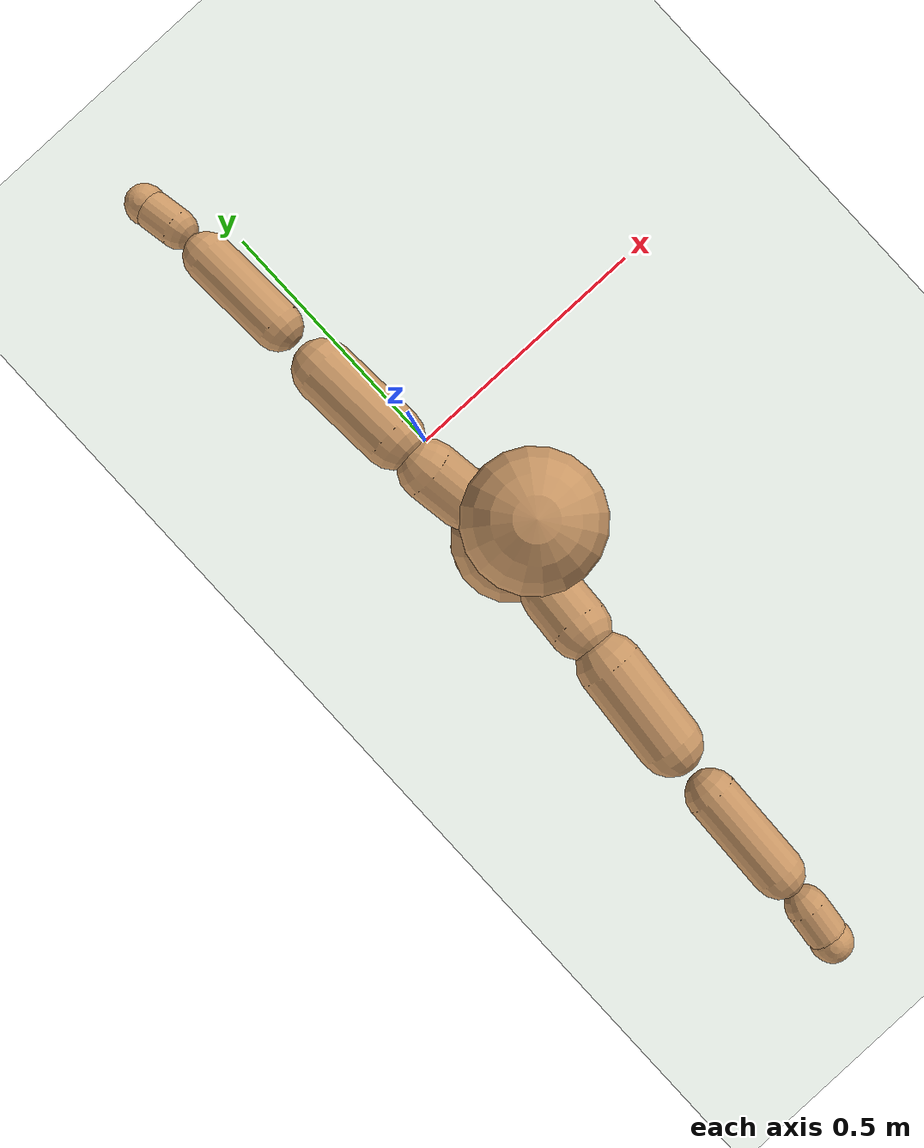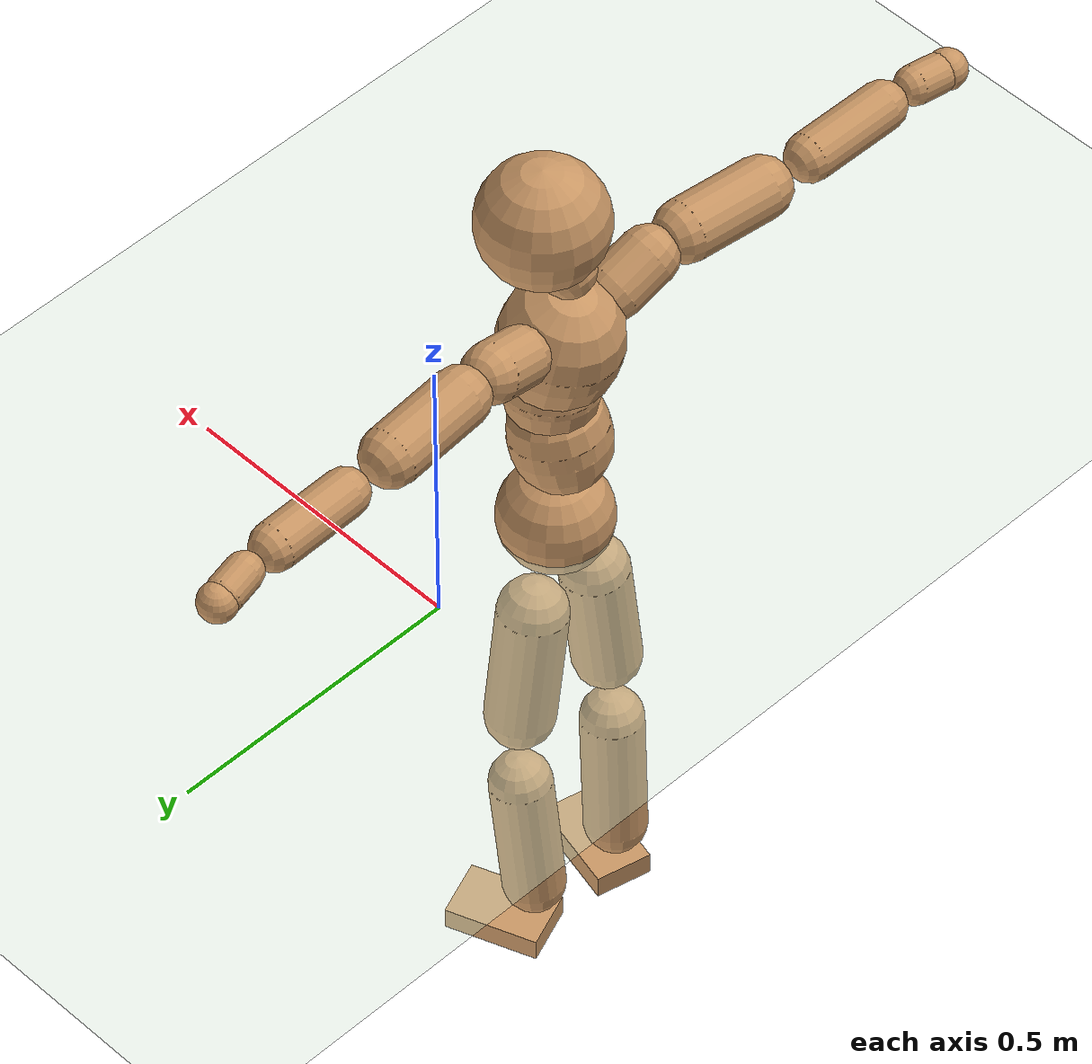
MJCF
<mujoco model="humanoid">
  <compiler coordinate="local" angle="radian"/>
  <default>
    <joint damping="0.0" armature="0.01" stiffness="0.0" limited="true"/>
    <geom conaffinity="1" condim="3" contype="7" margin="0.001" rgba="0.8 0.6 .4 1"/>
  </default>
  <asset>
    <texture type="skybox" builtin="gradient" rgb1=".4 .5 .6" rgb2="0 0 0" width="100" height="100"/>
    <texture builtin="flat" height="1278" mark="cross" markrgb="1 1 1" name="texgeom" random="0.01" rgb1="0.8 0.6 0.4" rgb2="0.8 0.6 0.4" type="cube" width="127"/>
    <texture builtin="checker" height="100" name="texplane" rgb1="0 0 0" rgb2="0.8 0.8 0.8" type="2d" width="100"/>
    <material name="MatPlane" reflectance="0.5" shininess="1" specular="1" texrepeat="60 60" texture="texplane"/>
    <material name="geom" texture="texgeom" texuniform="true"/>
  </asset>
  <worldbody>
    <light cutoff="100" diffuse="1 1 1" dir="-0 0 -1.3" directional="true" exponent="1" pos="0 0 1.3" specular=".1 .1 .1"/>
    <geom conaffinity="1" condim="3" name="floor" pos="0 0 0" rgba="0.8 0.9 0.8 1" size="100 100 .2" type="plane" material="MatPlane"/>
    <body name="Pelvis" pos="0.0011 -0.2404 0.0186">
      <freejoint name="Pelvis"/>
      <geom type="sphere" contype="1" conaffinity="1" density="500" size="0.0913" pos="0.0000 0.0000 0.0000" name="Pelvis"/>
      <body name="L_Hip" pos="-0.0178 0.0556 -0.0799">
        <joint name="L_Hip_x" type="hinge" pos="0 0 0" axis="1 0 0" stiffness="800" damping="80" armature="0.02" range="-180.0000 180.0000"/>
        <joint name="L_Hip_y" type="hinge" pos="0 0 0" axis="0 1 0" stiffness="800" damping="80" armature="0.02" range="-180.0000 180.0000"/>
        <joint name="L_Hip_z" type="hinge" pos="0 0 0" axis="0 0 1" stiffness="800" damping="80" armature="0.02" range="-180.0000 180.0000"/>
        <geom type="capsule" contype="1" conaffinity="1" density="500" fromto="0.0013 0.0082 -0.0730 0.0052 0.0328 -0.2920" size="0.0561" name="L_Hip"/>
        <body name="L_Knee" pos="0.0065 0.041 -0.365">
          <joint name="L_Knee_x" type="hinge" pos="0 0 0" axis="1 0 0" stiffness="800" damping="80" armature="0.02" range="-180.0000 180.0000"/>
          <joint name="L_Knee_y" type="hinge" pos="0 0 0" axis="0 1 0" stiffness="800" damping="80" armature="0.02" range="-180.0000 180.0000"/>
          <joint name="L_Knee_z" type="hinge" pos="0 0 0" axis="0 0 1" stiffness="800" damping="80" armature="0.02" range="-180.0000 180.0000"/>
          <geom type="capsule" contype="1" conaffinity="1" density="500" fromto="-0.0071 -0.0025 -0.0767 -0.0282 -0.0099 -0.3069" size="0.0506" name="L_Knee"/>
          <body name="L_Ankle" pos="-0.0353 -0.0123 -0.3836">
            <joint name="L_Ankle_x" type="hinge" pos="0 0 0" axis="1 0 0" stiffness="800" damping="80" armature="0.02" range="-180.0000 180.0000"/>
            <joint name="L_Ankle_y" type="hinge" pos="0 0 0" axis="0 1 0" stiffness="800" damping="80" armature="0.02" range="-180.0000 180.0000"/>
            <joint name="L_Ankle_z" type="hinge" pos="0 0 0" axis="0 0 1" stiffness="800" damping="80" armature="0.02" range="-180.0000 180.0000"/>
            <geom type="box" contype="1" conaffinity="1" density="500" pos="0.0558 0.0213 -0.0277" size="0.0782 0.0499 0.0201" quat="0.9834 0.0000 0.0000 0.1813" name="L_Ankle"/>
            <body name="L_Toe" pos="0.1115 0.0426 -0.0554">
              <joint name="L_Toe_x" type="hinge" pos="0 0 0" axis="1 0 0" stiffness="500" damping="50" armature="0.02" range="-180.0000 180.0000"/>
              <joint name="L_Toe_y" type="hinge" pos="0 0 0" axis="0 1 0" stiffness="500" damping="50" armature="0.02" range="-180.0000 180.0000"/>
              <joint name="L_Toe_z" type="hinge" pos="0 0 0" axis="0 0 1" stiffness="500" damping="50" armature="0.02" range="-180.0000 180.0000"/>
              <geom type="box" contype="1" conaffinity="1" density="500" pos="0.0000 0.0000 0.0287" size="0.001 0.0023 0.0011" quat="0.9826 0.0000 0.0000 0.1859" name="L_Toe"/>
            </body>
          </body>
        </body>
      </body>
      <body name="R_Hip" pos="-0.0143 -0.0577 -0.0881">
        <joint name="R_Hip_x" type="hinge" pos="0 0 0" axis="1 0 0" stiffness="800" damping="80" armature="0.02" range="-180.0000 180.0000"/>
        <joint name="R_Hip_y" type="hinge" pos="0 0 0" axis="0 1 0" stiffness="800" damping="80" armature="0.02" range="-180.0000 180.0000"/>
        <joint name="R_Hip_z" type="hinge" pos="0 0 0" axis="0 0 1" stiffness="800" damping="80" armature="0.02" range="-180.0000 180.0000"/>
        <geom type="capsule" contype="1" conaffinity="1" density="500" fromto="-0.0007 -0.0085 -0.0720 -0.0029 -0.0339 -0.2881" size="0.056" name="R_Hip"/>
        <body name="R_Knee" pos="-0.0036 -0.0424 -0.3601">
          <joint name="R_Knee_x" type="hinge" pos="0 0 0" axis="1 0 0" stiffness="800" damping="80" armature="0.02" range="-180.0000 180.0000"/>
          <joint name="R_Knee_y" type="hinge" pos="0 0 0" axis="0 1 0" stiffness="800" damping="80" armature="0.02" range="-180.0000 180.0000"/>
          <joint name="R_Knee_z" type="hinge" pos="0 0 0" axis="0 0 1" stiffness="800" damping="80" armature="0.02" range="-180.0000 180.0000"/>
          <geom type="capsule" contype="1" conaffinity="1" density="500" fromto="-0.0065 0.0033 -0.0756 -0.0259 0.0131 -0.3023" size="0.0514" name="R_Knee"/>
          <body name="R_Ankle" pos="-0.0323 0.0164 -0.3778">
            <joint name="R_Ankle_x" type="hinge" pos="0 0 0" axis="1 0 0" stiffness="800" damping="80" armature="0.02" range="-180.0000 180.0000"/>
            <joint name="R_Ankle_y" type="hinge" pos="0 0 0" axis="0 1 0" stiffness="800" damping="80" armature="0.02" range="-180.0000 180.0000"/>
            <joint name="R_Ankle_z" type="hinge" pos="0 0 0" axis="0 0 1" stiffness="800" damping="80" armature="0.02" range="-180.0000 180.0000"/>
            <geom type="box" contype="1" conaffinity="1" density="500" pos="0.0596 -0.0142 -0.0294" size="0.0834 0.0479 0.0208" quat="0.9931 0.0000 0.0000 -0.1169" name="R_Ankle"/>
            <body name="R_Toe" pos="0.1191 -0.0284 -0.0588">
              <joint name="R_Toe_x" type="hinge" pos="0 0 0" axis="1 0 0" stiffness="500" damping="50" armature="0.02" range="-180.0000 180.0000"/>
              <joint name="R_Toe_y" type="hinge" pos="0 0 0" axis="0 1 0" stiffness="500" damping="50" armature="0.02" range="-180.0000 180.0000"/>
              <joint name="R_Toe_z" type="hinge" pos="0 0 0" axis="0 0 1" stiffness="500" damping="50" armature="0.02" range="-180.0000 180.0000"/>
              <geom type="box" contype="1" conaffinity="1" density="500" pos="0.0000 0.0000 0.0310" size="0.001 0.0023 0.0011" quat="0.9942 0.0000 0.0000 -0.1072" name="R_Toe"/>
            </body>
          </body>
        </body>
      </body>
      <body name="Torso" pos="-0.0308 0.004 0.1212">
        <joint name="Torso_x" type="hinge" pos="0 0 0" axis="1 0 0" stiffness="1000" damping="100" armature="0.02" range="-180.0000 180.0000"/>
        <joint name="Torso_y" type="hinge" pos="0 0 0" axis="0 1 0" stiffness="1000" damping="100" armature="0.02" range="-180.0000 180.0000"/>
        <joint name="Torso_z" type="hinge" pos="0 0 0" axis="0 0 1" stiffness="1000" damping="100" armature="0.02" range="-180.0000 180.0000"/>
        <geom type="capsule" contype="1" conaffinity="1" density="500" fromto="0.0184 0.0028 0.0824 0.0123 0.0019 0.0550" size="0.0782" name="Torso"/>
        <body name="Spine" pos="0.0307 0.0047 0.1374">
          <joint name="Spine_x" type="hinge" pos="0 0 0" axis="1 0 0" stiffness="1000" damping="100" armature="0.02" range="-180.0000 180.0000"/>
          <joint name="Spine_y" type="hinge" pos="0 0 0" axis="0 1 0" stiffness="1000" damping="100" armature="0.02" range="-180.0000 180.0000"/>
          <joint name="Spine_z" type="hinge" pos="0 0 0" axis="0 0 1" stiffness="1000" damping="100" armature="0.02" range="-180.0000 180.0000"/>
          <geom type="capsule" contype="1" conaffinity="1" density="500" fromto="0.0013 -0.0017 0.0329 0.0009 -0.0011 0.0219" size="0.076" name="Spine"/>
          <body name="Chest" pos="0.0022 -0.0028 0.0549">
            <joint name="Chest_x" type="hinge" pos="0 0 0" axis="1 0 0" stiffness="1000" damping="100" armature="0.02" range="-180.0000 180.0000"/>
            <joint name="Chest_y" type="hinge" pos="0 0 0" axis="0 1 0" stiffness="1000" damping="100" armature="0.02" range="-180.0000 180.0000"/>
            <joint name="Chest_z" type="hinge" pos="0 0 0" axis="0 0 1" stiffness="1000" damping="100" armature="0.02" range="-180.0000 180.0000"/>
            <geom type="capsule" contype="1" conaffinity="1" density="500" fromto="-0.0164 -0.0053 0.0827 -0.0109 -0.0035 0.0551" size="0.0953" name="Chest"/>
            <body name="Neck" pos="-0.0334 -0.0122 0.2003">
              <joint name="Neck_x" type="hinge" pos="0 0 0" axis="1 0 0" stiffness="500" damping="50" armature="0.02" range="-180.0000 180.0000"/>
              <joint name="Neck_y" type="hinge" pos="0 0 0" axis="0 1 0" stiffness="500" damping="50" armature="0.02" range="-180.0000 180.0000"/>
              <joint name="Neck_z" type="hinge" pos="0 0 0" axis="0 0 1" stiffness="500" damping="50" armature="0.02" range="-180.0000 180.0000"/>
              <geom type="capsule" contype="1" conaffinity="1" density="500" fromto="0.0107 0.0018 0.0181 0.0427 0.0073 0.0723" size="0.0433" name="Neck"/>
              <body name="Head" pos="0.0533 0.0092 0.0904">
                <joint name="Head_x" type="hinge" pos="0 0 0" axis="1 0 0" stiffness="500" damping="50" armature="0.02" range="-180.0000 180.0000"/>
                <joint name="Head_y" type="hinge" pos="0 0 0" axis="0 1 0" stiffness="500" damping="50" armature="0.02" range="-180.0000 180.0000"/>
                <joint name="Head_z" type="hinge" pos="0 0 0" axis="0 0 1" stiffness="500" damping="50" armature="0.02" range="-180.0000 180.0000"/>
                <geom type="sphere" contype="1" conaffinity="1" density="500" size="0.1016" pos="0.0000 0.0000 0.0000" name="Head"/>
              </body>
            </body>
            <body name="L_Thorax" pos="-0.0232 0.0655 0.1063">
              <joint name="L_Thorax_x" type="hinge" pos="0 0 0" axis="1 0 0" stiffness="500" damping="50" armature="0.02" range="-180.0000 180.0000"/>
              <joint name="L_Thorax_y" type="hinge" pos="0 0 0" axis="0 1 0" stiffness="500" damping="50" armature="0.02" range="-180.0000 180.0000"/>
              <joint name="L_Thorax_z" type="hinge" pos="0 0 0" axis="0 0 1" stiffness="500" damping="50" armature="0.02" range="-180.0000 180.0000"/>
              <geom type="capsule" contype="1" conaffinity="1" density="500" fromto="-0.0034 0.0224 0.0082 -0.0138 0.0895 0.0326" size="0.047" name="L_Thorax"/>
              <body name="L_Shoulder" pos="-0.0172 0.1119 0.0408">
                <joint name="L_Shoulder_x" type="hinge" pos="0 0 0" axis="1 0 0" stiffness="500" damping="50" armature="0.02" range="-720.0000 720.0000"/>
                <joint name="L_Shoulder_y" type="hinge" pos="0 0 0" axis="0 1 0" stiffness="500" damping="50" armature="0.02" range="-720.0000 720.0000"/>
                <joint name="L_Shoulder_z" type="hinge" pos="0 0 0" axis="0 0 1" stiffness="500" damping="50" armature="0.02" range="-720.0000 720.0000"/>
                <geom type="capsule" contype="1" conaffinity="1" density="500" fromto="-0.0028 0.0471 -0.0021 -0.0112 0.1885 -0.0085" size="0.0479" name="L_Shoulder"/>
                <body name="L_Elbow" pos="-0.014 0.2357 -0.0106">
                  <joint name="L_Elbow_x" type="hinge" pos="0 0 0" axis="1 0 0" stiffness="500" damping="50" armature="0.02" range="-720.0000 720.0000"/>
                  <joint name="L_Elbow_y" type="hinge" pos="0 0 0" axis="0 1 0" stiffness="500" damping="50" armature="0.02" range="-720.0000 720.0000"/>
                  <joint name="L_Elbow_z" type="hinge" pos="0 0 0" axis="0 0 1" stiffness="500" damping="50" armature="0.02" range="-720.0000 720.0000"/>
                  <geom type="capsule" contype="1" conaffinity="1" density="500" fromto="-0.0023 0.0468 0.0017 -0.0091 0.1872 0.0066" size="0.0379" name="L_Elbow"/>
                  <body name="L_Wrist" pos="-0.0113 0.234 0.0083">
                    <joint name="L_Wrist_x" type="hinge" pos="0 0 0" axis="1 0 0" stiffness="300" damping="30" armature="0.02" range="-180.0000 180.0000"/>
                    <joint name="L_Wrist_y" type="hinge" pos="0 0 0" axis="0 1 0" stiffness="300" damping="30" armature="0.02" range="-180.0000 180.0000"/>
                    <joint name="L_Wrist_z" type="hinge" pos="0 0 0" axis="0 0 1" stiffness="300" damping="30" armature="0.02" range="-180.0000 180.0000"/>
                    <geom type="capsule" contype="1" conaffinity="1" density="500" fromto="-0.0026 0.0150 -0.0018 -0.0106 0.0598 -0.0072" size="0.0299" name="L_Wrist"/>
                    <body name="L_Hand" pos="-0.0132 0.0748 -0.0091">
                      <joint name="L_Hand_x" type="hinge" pos="0 0 0" axis="1 0 0" stiffness="300" damping="30" armature="0.02" range="-180.0000 180.0000"/>
                      <joint name="L_Hand_y" type="hinge" pos="0 0 0" axis="0 1 0" stiffness="300" damping="30" armature="0.02" range="-180.0000 180.0000"/>
                      <joint name="L_Hand_z" type="hinge" pos="0 0 0" axis="0 0 1" stiffness="300" damping="30" armature="0.02" range="-180.0000 180.0000"/>
                      <geom type="sphere" contype="1" conaffinity="1" density="500" size="0.0309" pos="0.0000 0.0000 0.0000" name="L_Hand"/>
                    </body>
                  </body>
                </body>
              </body>
            </body>
            <body name="R_Thorax" pos="-0.0251 -0.08 0.1069">
              <joint name="R_Thorax_x" type="hinge" pos="0 0 0" axis="1 0 0" stiffness="500" damping="50" armature="0.02" range="-180.0000 180.0000"/>
              <joint name="R_Thorax_y" type="hinge" pos="0 0 0" axis="0 1 0" stiffness="500" damping="50" armature="0.02" range="-180.0000 180.0000"/>
              <joint name="R_Thorax_z" type="hinge" pos="0 0 0" axis="0 0 1" stiffness="500" damping="50" armature="0.02" range="-180.0000 180.0000"/>
              <geom type="capsule" contype="1" conaffinity="1" density="500" fromto="-0.0014 -0.0212 0.0083 -0.0058 -0.0846 0.0333" size="0.0479" name="R_Thorax"/>
              <body name="R_Shoulder" pos="-0.0072 -0.1058 0.0416">
                <joint name="R_Shoulder_x" type="hinge" pos="0 0 0" axis="1 0 0" stiffness="500" damping="50" armature="0.02" range="-720.0000 720.0000"/>
                <joint name="R_Shoulder_y" type="hinge" pos="0 0 0" axis="0 1 0" stiffness="500" damping="50" armature="0.02" range="-720.0000 720.0000"/>
                <joint name="R_Shoulder_z" type="hinge" pos="0 0 0" axis="0 0 1" stiffness="500" damping="50" armature="0.02" range="-720.0000 720.0000"/>
                <geom type="capsule" contype="1" conaffinity="1" density="500" fromto="-0.0041 -0.0480 -0.0020 -0.0164 -0.1920 -0.0081" size="0.0496" name="R_Shoulder"/>
                <body name="R_Elbow" pos="-0.0205 -0.24 -0.0102">
                  <joint name="R_Elbow_x" type="hinge" pos="0 0 0" axis="1 0 0" stiffness="500" damping="50" armature="0.02" range="-720.0000 720.0000"/>
                  <joint name="R_Elbow_y" type="hinge" pos="0 0 0" axis="0 1 0" stiffness="500" damping="50" armature="0.02" range="-720.0000 720.0000"/>
                  <joint name="R_Elbow_z" type="hinge" pos="0 0 0" axis="0 0 1" stiffness="500" damping="50" armature="0.02" range="-720.0000 720.0000"/>
                  <geom type="capsule" contype="1" conaffinity="1" density="500" fromto="-0.0016 -0.0489 0.0018 -0.0066 -0.1954 0.0070" size="0.0395" name="R_Elbow"/>
                  <body name="R_Wrist" pos="-0.0082 -0.2443 0.0088">
                    <joint name="R_Wrist_x" type="hinge" pos="0 0 0" axis="1 0 0" stiffness="300" damping="30" armature="0.02" range="-180.0000 180.0000"/>
                    <joint name="R_Wrist_y" type="hinge" pos="0 0 0" axis="0 1 0" stiffness="300" damping="30" armature="0.02" range="-180.0000 180.0000"/>
                    <joint name="R_Wrist_z" type="hinge" pos="0 0 0" axis="0 0 1" stiffness="300" damping="30" armature="0.02" range="-180.0000 180.0000"/>
                    <geom type="capsule" contype="1" conaffinity="1" density="500" fromto="-0.0018 -0.0159 -0.0015 -0.0070 -0.0636 -0.0060" size="0.0316" name="R_Wrist"/>
                    <body name="R_Hand" pos="-0.0088 -0.0795 -0.0075">
                      <joint name="R_Hand_x" type="hinge" pos="0 0 0" axis="1 0 0" stiffness="300" damping="30" armature="0.02" range="-180.0000 180.0000"/>
                      <joint name="R_Hand_y" type="hinge" pos="0 0 0" axis="0 1 0" stiffness="300" damping="30" armature="0.02" range="-180.0000 180.0000"/>
                      <joint name="R_Hand_z" type="hinge" pos="0 0 0" axis="0 0 1" stiffness="300" damping="30" armature="0.02" range="-180.0000 180.0000"/>
                      <geom type="sphere" contype="1" conaffinity="1" density="500" size="0.0325" pos="0.0000 0.0000 0.0000" name="R_Hand"/>
                    </body>
                  </body>
                </body>
              </body>
            </body>
          </body>
        </body>
      </body>
    </body>
  </worldbody>
  <actuator>
    <motor name="L_Hip_x" joint="L_Hip_x" gear="500"/>
    <motor name="L_Hip_y" joint="L_Hip_y" gear="500"/>
    <motor name="L_Hip_z" joint="L_Hip_z" gear="500"/>
    <motor name="L_Knee_x" joint="L_Knee_x" gear="500"/>
    <motor name="L_Knee_y" joint="L_Knee_y" gear="500"/>
    <motor name="L_Knee_z" joint="L_Knee_z" gear="500"/>
    <motor name="L_Ankle_x" joint="L_Ankle_x" gear="500"/>
    <motor name="L_Ankle_y" joint="L_Ankle_y" gear="500"/>
    <motor name="L_Ankle_z" joint="L_Ankle_z" gear="500"/>
    <motor name="L_Toe_x" joint="L_Toe_x" gear="500"/>
    <motor name="L_Toe_y" joint="L_Toe_y" gear="500"/>
    <motor name="L_Toe_z" joint="L_Toe_z" gear="500"/>
    <motor name="R_Hip_x" joint="R_Hip_x" gear="500"/>
    <motor name="R_Hip_y" joint="R_Hip_y" gear="500"/>
    <motor name="R_Hip_z" joint="R_Hip_z" gear="500"/>
    <motor name="R_Knee_x" joint="R_Knee_x" gear="500"/>
    <motor name="R_Knee_y" joint="R_Knee_y" gear="500"/>
    <motor name="R_Knee_z" joint="R_Knee_z" gear="500"/>
    <motor name="R_Ankle_x" joint="R_Ankle_x" gear="500"/>
    <motor name="R_Ankle_y" joint="R_Ankle_y" gear="500"/>
    <motor name="R_Ankle_z" joint="R_Ankle_z" gear="500"/>
    <motor name="R_Toe_x" joint="R_Toe_x" gear="500"/>
    <motor name="R_Toe_y" joint="R_Toe_y" gear="500"/>
    <motor name="R_Toe_z" joint="R_Toe_z" gear="500"/>
    <motor name="Torso_x" joint="Torso_x" gear="500"/>
    <motor name="Torso_y" joint="Torso_y" gear="500"/>
    <motor name="Torso_z" joint="Torso_z" gear="500"/>
    <motor name="Spine_x" joint="Spine_x" gear="500"/>
    <motor name="Spine_y" joint="Spine_y" gear="500"/>
    <motor name="Spine_z" joint="Spine_z" gear="500"/>
    <motor name="Chest_x" joint="Chest_x" gear="500"/>
    <motor name="Chest_y" joint="Chest_y" gear="500"/>
    <motor name="Chest_z" joint="Chest_z" gear="500"/>
    <motor name="Neck_x" joint="Neck_x" gear="500"/>
    <motor name="Neck_y" joint="Neck_y" gear="500"/>
    <motor name="Neck_z" joint="Neck_z" gear="500"/>
    <motor name="Head_x" joint="Head_x" gear="500"/>
    <motor name="Head_y" joint="Head_y" gear="500"/>
    <motor name="Head_z" joint="Head_z" gear="500"/>
    <motor name="L_Thorax_x" joint="L_Thorax_x" gear="500"/>
    <motor name="L_Thorax_y" joint="L_Thorax_y" gear="500"/>
    <motor name="L_Thorax_z" joint="L_Thorax_z" gear="500"/>
    <motor name="L_Shoulder_x" joint="L_Shoulder_x" gear="500"/>
    <motor name="L_Shoulder_y" joint="L_Shoulder_y" gear="500"/>
    <motor name="L_Shoulder_z" joint="L_Shoulder_z" gear="500"/>
    <motor name="L_Elbow_x" joint="L_Elbow_x" gear="500"/>
    <motor name="L_Elbow_y" joint="L_Elbow_y" gear="500"/>
    <motor name="L_Elbow_z" joint="L_Elbow_z" gear="500"/>
    <motor name="L_Wrist_x" joint="L_Wrist_x" gear="500"/>
    <motor name="L_Wrist_y" joint="L_Wrist_y" gear="500"/>
    <motor name="L_Wrist_z" joint="L_Wrist_z" gear="500"/>
    <motor name="L_Hand_x" joint="L_Hand_x" gear="500"/>
    <motor name="L_Hand_y" joint="L_Hand_y" gear="500"/>
    <motor name="L_Hand_z" joint="L_Hand_z" gear="500"/>
    <motor name="R_Thorax_x" joint="R_Thorax_x" gear="500"/>
    <motor name="R_Thorax_y" joint="R_Thorax_y" gear="500"/>
    <motor name="R_Thorax_z" joint="R_Thorax_z" gear="500"/>
    <motor name="R_Shoulder_x" joint="R_Shoulder_x" gear="500"/>
    <motor name="R_Shoulder_y" joint="R_Shoulder_y" gear="500"/>
    <motor name="R_Shoulder_z" joint="R_Shoulder_z" gear="500"/>
    <motor name="R_Elbow_x" joint="R_Elbow_x" gear="500"/>
    <motor name="R_Elbow_y" joint="R_Elbow_y" gear="500"/>
    <motor name="R_Elbow_z" joint="R_Elbow_z" gear="500"/>
    <motor name="R_Wrist_x" joint="R_Wrist_x" gear="500"/>
    <motor name="R_Wrist_y" joint="R_Wrist_y" gear="500"/>
    <motor name="R_Wrist_z" joint="R_Wrist_z" gear="500"/>
    <motor name="R_Hand_x" joint="R_Hand_x" gear="500"/>
    <motor name="R_Hand_y" joint="R_Hand_y" gear="500"/>
    <motor name="R_Hand_z" joint="R_Hand_z" gear="500"/>
  </actuator>
  <contact>
    <exclude body1="Torso" body2="Chest"/>
    <exclude body1="Head" body2="Chest"/>
    <exclude body1="R_Knee" body2="R_Toe"/>
    <exclude body1="R_Knee" body2="L_Ankle"/>
    <exclude body1="R_Knee" body2="L_Toe"/>
    <exclude body1="L_Knee" body2="L_Toe"/>
    <exclude body1="L_Knee" body2="R_Ankle"/>
    <exclude body1="L_Knee" body2="R_Toe"/>
    <exclude body1="L_Shoulder" body2="Chest"/>
    <exclude body1="R_Shoulder" body2="Chest"/>
  </contact>
  <sensor/>
  <size njmax="700" nconmax="700"/>
</mujoco>
